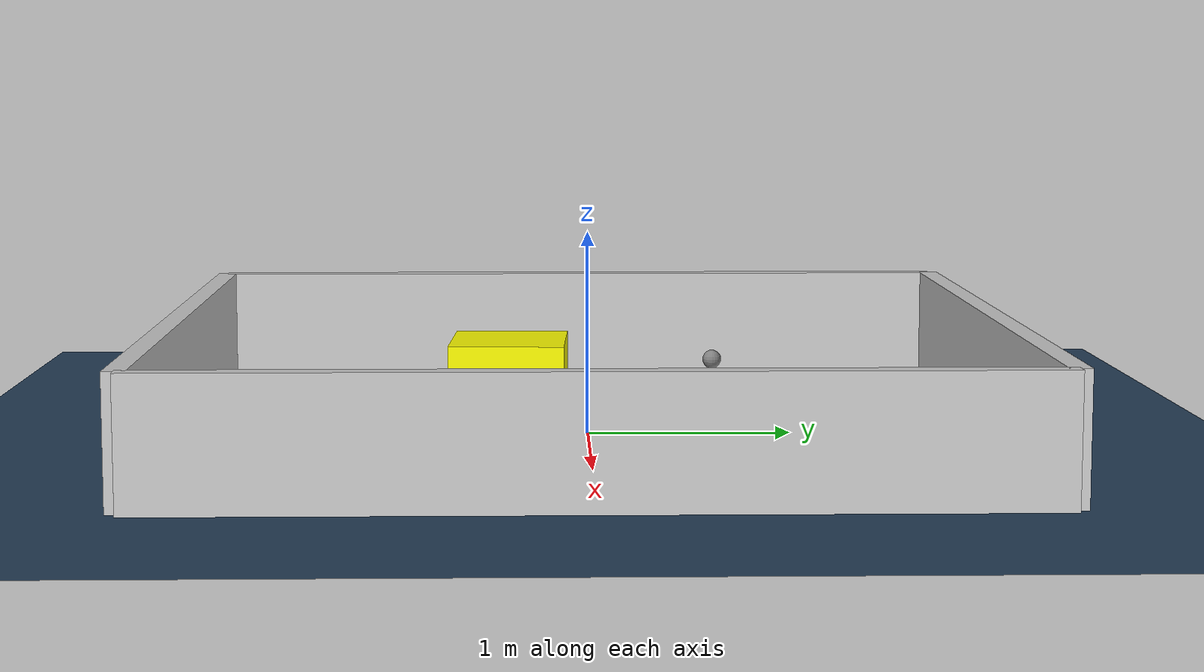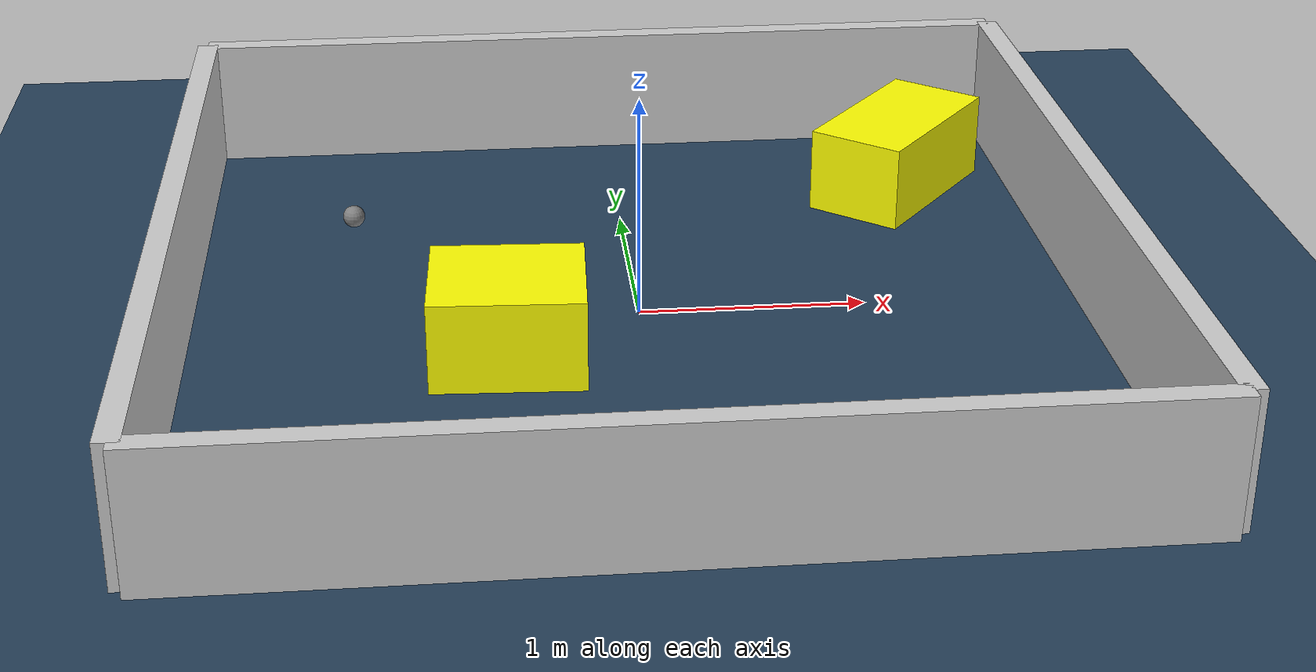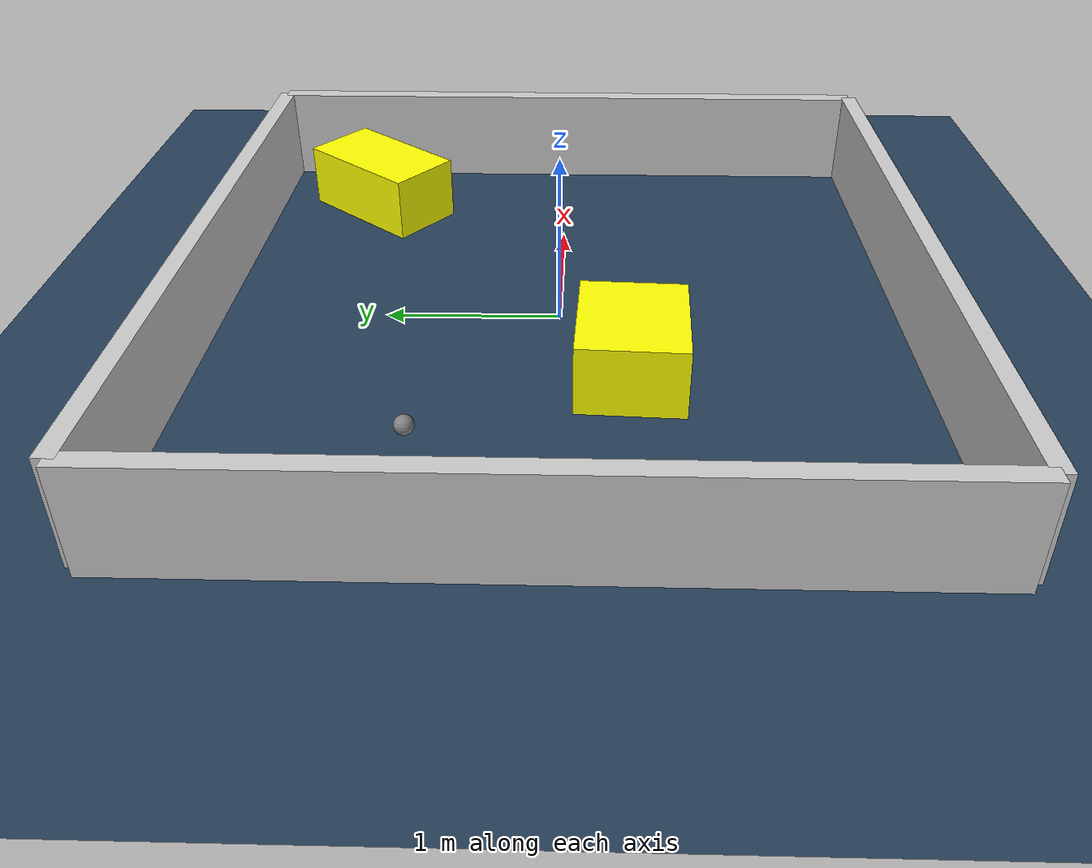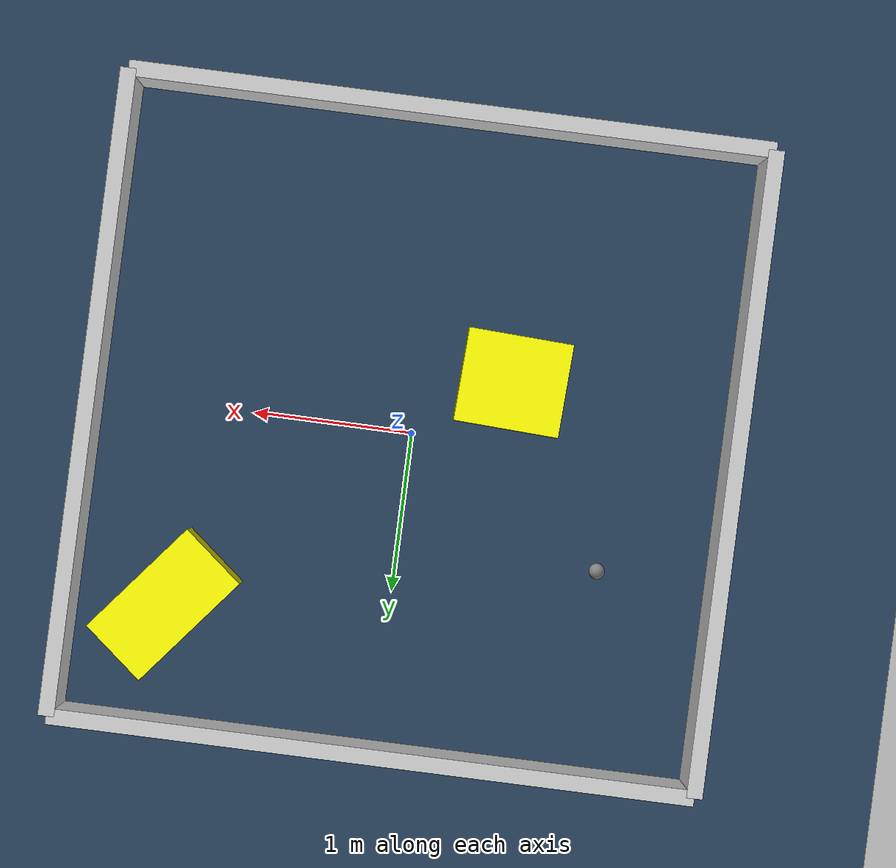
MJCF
<?xml version="1.0" ?>
<mujoco model="generated_environment">
  <option timestep="0.01" integrator="RK4" cone="elliptic"/>
  <default>
    <geom density="1"/>
  </default>
  <asset>
    <texture builtin="gradient" height="3072" rgb1="0.3 0.5 0.7" rgb2="0 0 0" type="skybox" width="512"/>
    <texture builtin="checker" height="300" mark="edge" markrgb="0.8 0.8 0.8" name="groundplane" rgb1="0.2 0.3 0.4" rgb2="0.1 0.2 0.3" type="2d" width="300"/>
    <material name="groundplane" reflectance="0.2" texrepeat="5 5" texture="groundplane" texuniform="true"/>
    <material name="robot" rgba="0.0 1.0 0.0 1"/>
  </asset>
  <worldbody>
    <light dir="0 0 -1" directional="true" pos="0 0 1.5"/>
    <geom condim="4" friction="1.0 0.005 0.001" material="groundplane" name="floor" size="0 0 0.05" type="plane"/>
    <body name="walls">
      <geom name="wall_1" condim="4" pos="-2.0 0.0 0.3" rgba="0.800000011920929 0.800000011920929 0.800000011920929 1.0" size="0.05 2.0 0.3" type="box"/>
      <geom name="wall_2" condim="4" pos="2.0 0.0 0.3" rgba="0.800000011920929 0.800000011920929 0.800000011920929 1.0" size="0.05 2.0 0.3" type="box"/>
      <geom name="wall_3" condim="4" pos="0.0 -2.0 0.3" rgba="0.800000011920929 0.800000011920929 0.800000011920929 1.0" size="2.0 0.05 0.3" type="box"/>
      <geom name="wall_4" condim="4" pos="0.0 2.0 0.3" rgba="0.800000011920929 0.800000011920929 0.800000011920929 1.0" size="2.0 0.05 0.3" type="box"/>
    </body>
    <body name="robot">
      <joint name="joint_x" type="slide" pos="0 0 0" axis="1 0 0"/>
      <joint name="joint_y" type="slide" pos="0 0 0" axis="0 1 0"/>
      <geom name="robot" type="sphere" pos="-1.256385808088135 0.7083338872542915 0.2" size="0.05" mass="5." friction="1.0 0.005 0.0001" condim="4"/>
      <site name="sensor_ball"/>
    </body>
    <body name="obstacle_1_movable">
      <geom name="obstacle_1_movable" condim="4" pos="1.3887580085090239 1.2475467772596187 0.2" euler="0 0 320.95016633889895" friction="1.0 0.005 0.001" rgba="1 1 0 1" size="0.23405854898684353 0.4316979442389558 0.2" type="box" mass="0.1"/>
      <joint type="free"/>
    </body>
    <body name="obstacle_2_movable">
      <geom name="obstacle_2_movable" condim="4" pos="-0.5887932303592902 -0.39057643517695295 0.2" euler="0 0 357.3443002307412" friction="1.0 0.005 0.001" rgba="1 1 0 1" size="0.3282032859265366 0.2921012075003255 0.2" type="box" mass="0.1"/>
      <joint type="free"/>
    </body>
  </worldbody>
  <actuator>
    <motor name="actuator_x" joint="joint_x" gear="1" ctrlrange="-1 1"/>
    <motor name="actuator_y" joint="joint_y" gear="1" ctrlrange="-1 1"/>
  </actuator>
</mujoco>
